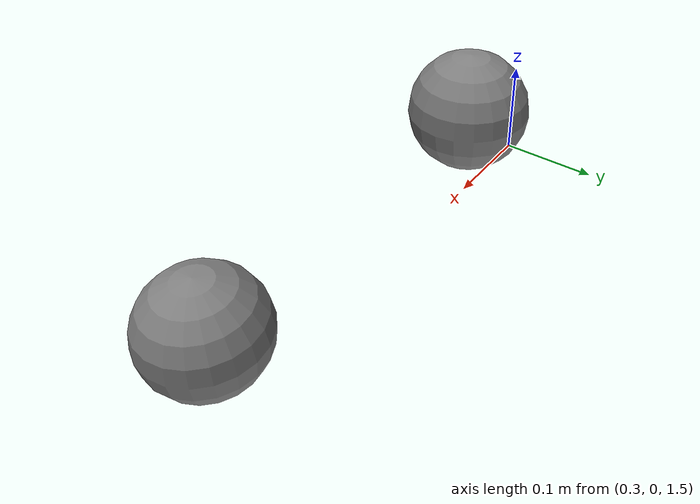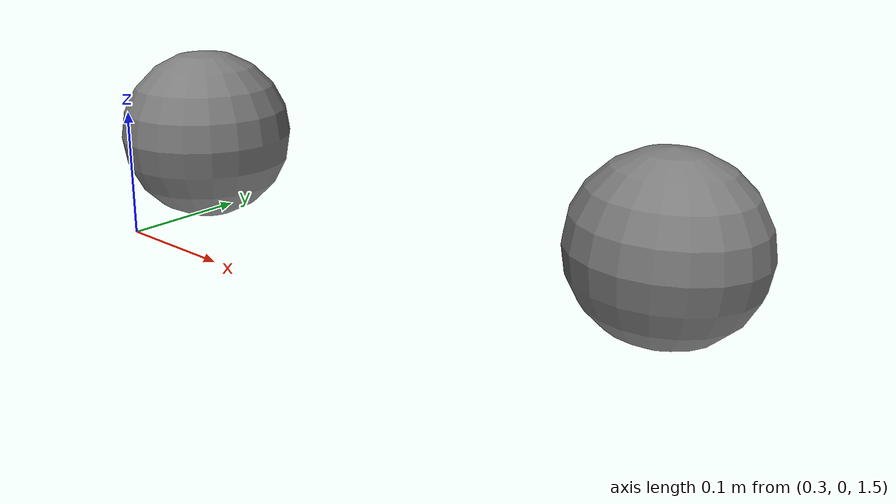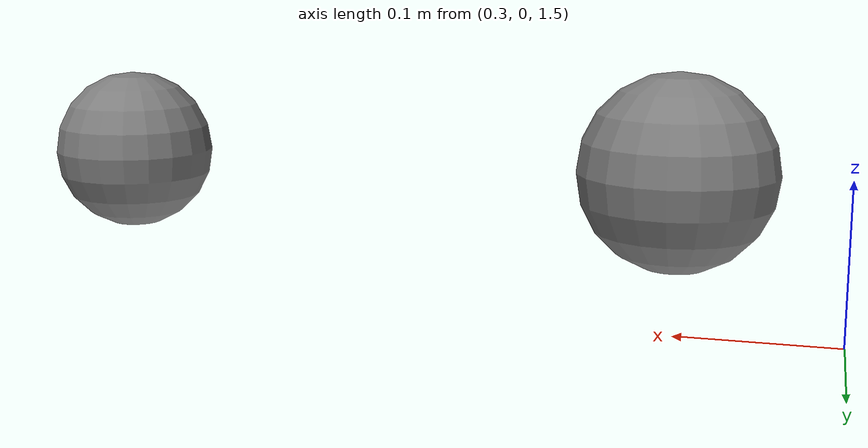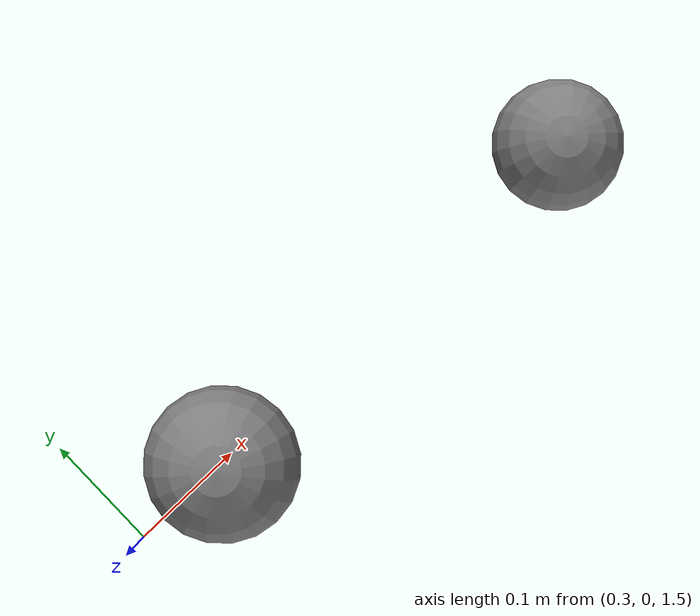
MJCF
<mujoco model="double pendulum">
  <option timestep="0.002"/>
  <worldbody>
    <body name="upper" pos="0.4 0 1.6">
      <joint type="hinge" pos="-0.4 0 0" axis="0 1 0"/>
      <geom type="sphere" size="0.06" mass="0.8"/>
      <body name="lower" pos="0.35 0 0">
        <joint type="hinge" pos="-0.35 0 0" axis="0 1 0"/>
        <geom type="sphere" size="0.05" mass="0.5"/>
      </body>
    </body>
  </worldbody>
</mujoco>
